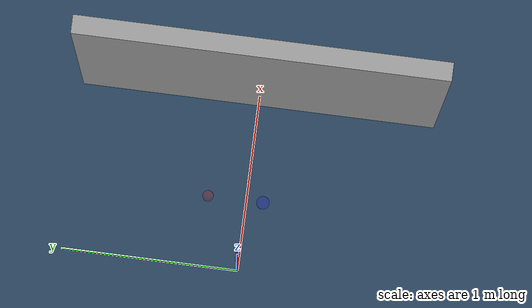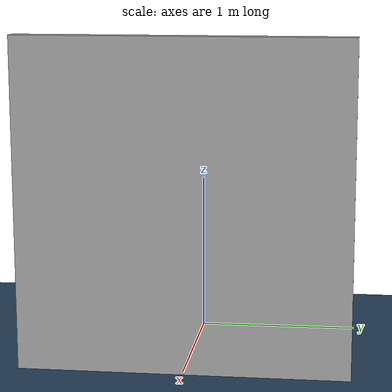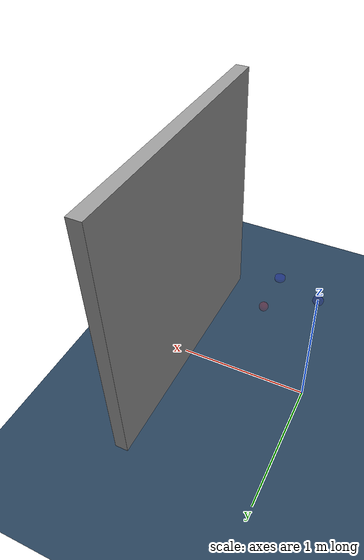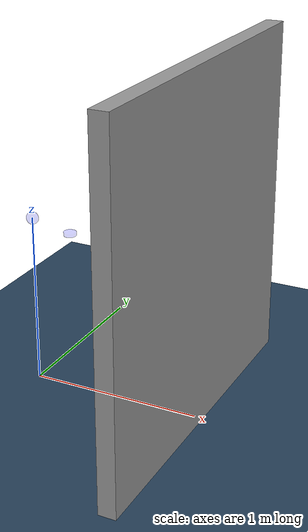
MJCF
<mujoco model="plugin_example">
  <extension>
    <plugin plugin="mujoco.magnet"/>
  </extension>

  <statistic center="0 0 0.5" extent="0.8"/>
  <option gravity="0 0 0"/>

  <visual>
    <headlight diffuse="0.6 0.6 0.6" ambient="0.3 0.3 0.3" specular="0 0 0"/>
    <rgba haze="0.15 0.25 0.35 1"/>
    <global azimuth="120" elevation="-20"/>
  </visual>

  <asset>
    <texture type="skybox" builtin="gradient" rgb1="0.3 0.5 0.7" rgb2="0 0 0" width="512" height="3072"/>
    <texture type="2d" name="groundplane" builtin="checker" mark="edge" rgb1="0.2 0.3 0.4" rgb2="0.1 0.2 0.3" markrgb="0.8 0.8 0.8" width="300" height="300"/>
    <material name="groundplane" texture="groundplane" texuniform="true" texrepeat="5 5" reflectance="0.2"/>
  </asset>

  <worldbody>
    <light pos="0 0 1.5" dir="0 0 -1" directional="true"/>
    <geom name="floor" size="0 0 0.05" type="plane" material="groundplane"/>

    <geom name="wall" type="box" pos="1 0 1" size="0.05 1 1" rgba="0.6 0.6 0.6 1"/>

    <!-- The first instance of the plugin MUST define the magnetic field at the origin and the gradient -->
    <plugin plugin="mujoco.magnet">
      <config key="type" value="linear_field"/>
      <config key="B0" value="0.01 0.01 0.01"/>
      <config key="dB" value="0.01 0 0"/>
    </plugin>

    <!-- The following declarations only define the intrinsic parameters of the magnet -->
    <body name="disk" pos="0 0 1" quat="1 1 0 0">
      <plugin plugin="mujoco.magnet">
        <config key="type" value="induced_magnet"/>
        <config key="mu_r" value="1000"/>
        <config key="V" value="7.7e-5"/>
        <config key="N" value="0.2 0.2 0.6"/>
      </plugin>
      <geom type="cylinder" size="0.035 0.01" rgba="0 0 1 0.2"/>
      <joint type="free" damping="0.05"/>
    </body>

    <!-- Another magnet -->
    <body name="disk2" pos="0.3 -0.1 1" quat="1 0 0 0">
      <plugin plugin="mujoco.magnet">
        <config key="type" value="induced_magnet"/>
        <config key="mu_r" value="1000"/>
        <config key="V" value="7.7e-5"/>
        <config key="N" value="0.2 0.2 0.6"/>
      </plugin>
      <geom type="cylinder" size="0.035 0.01" rgba="0 0 1 0.2"/>
      <joint type="free" damping="0.05"/>
    </body>

    <!-- An isotropic ball -->
    <body name="ball" pos="0.3 0.2 1" quat="1 0 0 0">
      <plugin plugin="mujoco.magnet">
        <config key="type" value="induced_magnet"/>
        <config key="mu_r" value="1000"/>
        <config key="V" value="2.82e-3"/>
      </plugin>
      <geom type="sphere" size="0.03" rgba="1 0 0 0.2"/>
      <joint type="free" damping="0.05"/>
    </body>
  </worldbody>
</mujoco>
